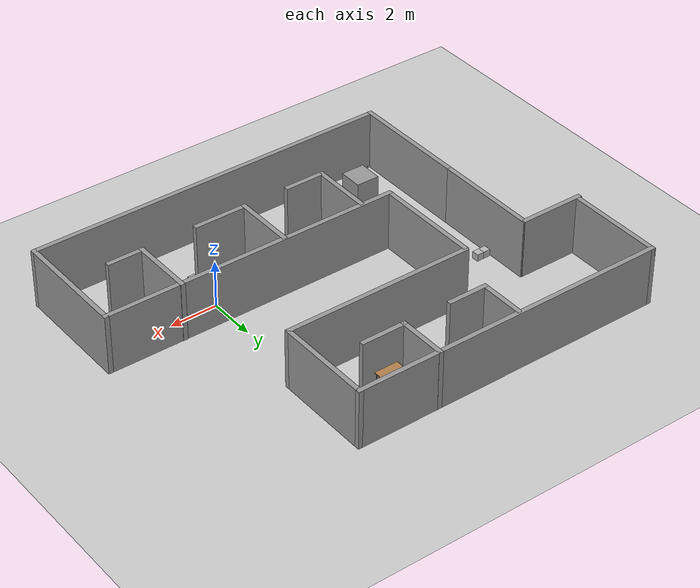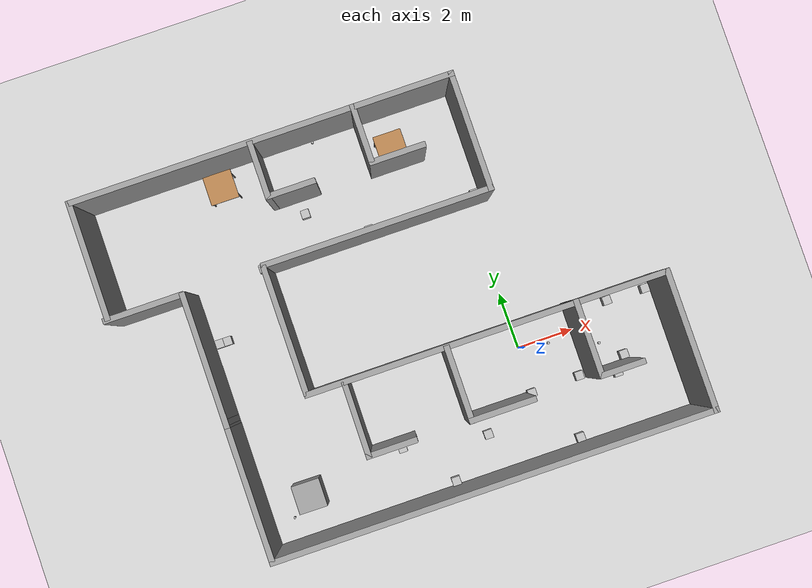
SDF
<sdf version="1.4">
 <world name="default">
  <physics type="ode">
   <gravity>0 0 -9.81</gravity>
   <ode>
    <solver><type>quick</type><iters>20</iters><sor>1</sor></solver>
    <constraints>
     <cfm>0</cfm>
     <erp>0.2</erp>
     <contact_max_correcting_vel>100</contact_max_correcting_vel>
     <contact_surface_layer>0</contact_surface_layer>
    </constraints>
   </ode>
   <real_time_update_rate>1000</real_time_update_rate>
   <max_step_size>0.001</max_step_size>
   <real_time_factor>1</real_time_factor>
  </physics>
  <light name="light1" type="directional">
   <pose>-2 0 4 0 -0 0</pose>
   <diffuse>1 1 1 1</diffuse>
   <specular>0.1 0.1 0.1 1</specular>
   <attenuation>
    <range>20</range>
    <constant>0.9</constant>
    <linear>0.01</linear>
    <quadratic>0.001</quadratic>
   </attenuation>
   <direction>0.2 0 -1</direction>
  </light>
  <model name="ground_plane">
   <static>1</static>
   <link name="link">
    <collision name="collision">
     <geometry><plane><normal>0 0 1</normal><size>100 100</size></plane></geometry>
     <surface><friction><ode><mu>100</mu><mu2>50</mu2></ode></friction></surface>
    </collision>
    <visual name="visual">
     <cast_shadows>0</cast_shadows>
     <geometry><plane><normal>0 0 1</normal><size>100 100</size></plane></geometry>
     <material>
      <script><uri>file://media/materials/scripts/gazebo.material</uri><name>Gazebo/Grey</name></script>
     </material>
    </visual>
    <velocity_decay><linear>0</linear><angular>0</angular></velocity_decay>
   </link>
  </model>
  <model name="building4">
   <pose>0.0604 0.08053 0 0 -0 0</pose>
   <link name="Wall_13">
    <collision name="Wall_13_Collision">
     <geometry><box><size>5.01 0.2 2.5</size></box></geometry>
     <pose>0 0 1.25 0 -0 0</pose>
    </collision>
    <visual name="Wall_13_Visual">
     <pose>0 0 1.25 0 -0 0</pose>
     <geometry><box><size>5.01 0.2 2.5</size></box></geometry>
     <material>
      <script><uri>file://media/materials/scripts/gazebo.material</uri><name>Gazebo/Grey</name></script>
     </material>
    </visual>
    <velocity_decay><linear>0</linear><angular>0</angular></velocity_decay>
    <pose>-10.233 -1.616 0 0 0 -1.5708</pose>
   </link>
   <link name="Wall_14">
    <collision name="Wall_14_Collision">
     <geometry><box><size>15.55 0.2 2.5</size></box></geometry>
     <pose>0 0 1.25 0 -0 0</pose>
    </collision>
    <visual name="Wall_14_Visual">
     <pose>0 0 1.25 0 -0 0</pose>
     <geometry><box><size>15.55 0.2 2.5</size></box></geometry>
     <material>
      <script><uri>file://media/materials/scripts/gazebo.material</uri><name>Gazebo/Grey</name></script>
     </material>
    </visual>
    <velocity_decay><linear>0</linear><angular>0</angular></velocity_decay>
    <pose>-2.55804 -4.02081 0 0 -0 2.5e-05</pose>
   </link>
   <link name="Wall_15">
    <collision name="Wall_15_Collision">
     <geometry><box><size>5.01 0.2 2.5</size></box></geometry>
     <pose>0 0 1.25 0 -0 0</pose>
    </collision>
    <visual name="Wall_15_Visual">
     <pose>0 0 1.25 0 -0 0</pose>
     <geometry><box><size>5.01 0.2 2.5</size></box></geometry>
     <material>
      <script><uri>file://media/materials/scripts/gazebo.material</uri><name>Gazebo/Grey</name></script>
     </material>
    </visual>
    <velocity_decay><linear>0</linear><angular>0</angular></velocity_decay>
    <pose>5.11693 -1.61562 0 0 -0 1.5708</pose>
   </link>
   <link name="Wall_16">
    <collision name="Wall_16_Collision">
     <geometry><box><size>12.72 0.2 2.5</size></box></geometry>
     <pose>0 0 1.25 0 -0 0</pose>
    </collision>
    <visual name="Wall_16_Visual">
     <pose>0 0 1.25 0 -0 0</pose>
     <geometry><box><size>12.72 0.2 2.5</size></box></geometry>
     <material>
      <script><uri>file://media/materials/scripts/gazebo.material</uri><name>Gazebo/Grey</name></script>
     </material>
    </visual>
    <velocity_decay><linear>0</linear><angular>0</angular></velocity_decay>
    <pose>-1.14308 0.789383 0 0 -0 3.14159</pose>
   </link>
   <link name="Wall_19">
    <collision name="Wall_19_Collision">
     <geometry><box><size>2.75243 0.2 2.5</size></box></geometry>
     <pose>0 0 1.25 0 -0 0</pose>
    </collision>
    <visual name="Wall_19_Visual">
     <pose>0 0 1.25 0 -0 0</pose>
     <geometry><box><size>2.75243 0.2 2.5</size></box></geometry>
     <material>
      <script><uri>file://media/materials/scripts/gazebo.material</uri><name>Gazebo/Grey</name></script>
     </material>
    </visual>
    <velocity_decay><linear>0</linear><angular>0</angular></velocity_decay>
    <pose>1.95298 -0.471453 0 0 0 -1.5708</pose>
   </link>
   <link name="Wall_20">
    <collision name="Wall_20_Collision">
     <geometry><box><size>1.61606 0.2 2.5</size></box></geometry>
     <pose>0 0 1.25 0 -0 0</pose>
    </collision>
    <visual name="Wall_20_Visual">
     <pose>0 0 1.25 0 -0 0</pose>
     <geometry><box><size>1.61606 0.2 2.5</size></box></geometry>
     <material>
      <script><uri>file://media/materials/scripts/gazebo.material</uri><name>Gazebo/Grey</name></script>
     </material>
    </visual>
    <velocity_decay><linear>0</linear><angular>0</angular></velocity_decay>
    <pose>2.66102 -1.74767 0 0 -0 0</pose>
   </link>
   <link name="Wall_22">
    <collision name="Wall_22_Collision">
     <geometry><box><size>2.69952 0.2 2.5</size></box></geometry>
     <pose>0 0 1.25 0 -0 0</pose>
    </collision>
    <visual name="Wall_22_Visual">
     <pose>0 0 1.25 0 -0 0</pose>
     <geometry><box><size>2.69952 0.2 2.5</size></box></geometry>
     <material>
      <script><uri>file://media/materials/scripts/gazebo.material</uri><name>Gazebo/Grey</name></script>
     </material>
    </visual>
    <velocity_decay><linear>0</linear><angular>0</angular></velocity_decay>
    <pose>-2.56997 -0.511128 0 0 0 -1.5708</pose>
   </link>
   <link name="Wall_23">
    <collision name="Wall_23_Collision">
     <geometry><box><size>2.34347 0.2 2.5</size></box></geometry>
     <pose>0 0 1.25 0 -0 0</pose>
    </collision>
    <visual name="Wall_23_Visual">
     <pose>0 0 1.25 0 -0 0</pose>
     <geometry><box><size>2.34347 0.2 2.5</size></box></geometry>
     <material>
      <script><uri>file://media/materials/scripts/gazebo.material</uri><name>Gazebo/Grey</name></script>
     </material>
    </visual>
    <velocity_decay><linear>0</linear><angular>0</angular></velocity_decay>
    <pose>-1.49823 -1.76089 0 0 -0 0</pose>
   </link>
   <link name="Wall_27">
    <collision name="Wall_27_Collision">
     <geometry><box><size>2.67304 0.2 2.5</size></box></geometry>
     <pose>0 0 1.25 0 -0 0</pose>
    </collision>
    <visual name="Wall_27_Visual">
     <pose>0 0 1.25 0 -0 0</pose>
     <geometry><box><size>2.67304 0.2 2.5</size></box></geometry>
     <material>
      <script><uri>file://media/materials/scripts/gazebo.material</uri><name>Gazebo/Grey</name></script>
     </material>
    </visual>
    <velocity_decay><linear>0</linear><angular>0</angular></velocity_decay>
    <pose>-6.134 -0.5245 0 0 0 -1.57646</pose>
   </link>
   <link name="Wall_28">
    <collision name="Wall_28_Collision">
     <geometry><box><size>1.78778 0.2 2.5</size></box></geometry>
     <pose>0 0 1.25 0 -0 0</pose>
    </collision>
    <visual name="Wall_28_Visual">
     <pose>0 0 1.25 0 -0 0</pose>
     <geometry><box><size>1.78778 0.2 2.5</size></box></geometry>
     <material>
      <script><uri>file://media/materials/scripts/gazebo.material</uri><name>Gazebo/Grey</name></script>
     </material>
    </visual>
    <velocity_decay><linear>0</linear><angular>0</angular></velocity_decay>
    <pose>-5.34711 -1.761 0 0 -0 0</pose>
   </link>
   <link name="Wall_30">
    <collision name="Wall_30_Collision">
     <geometry><box><size>4.722 0.2 2.5</size></box></geometry>
     <pose>0 0 1.25 0 -0 0</pose>
    </collision>
    <visual name="Wall_30_Visual">
     <pose>0 0 1.25 0 -0 0</pose>
     <geometry><box><size>4.722 0.2 2.5</size></box></geometry>
     <material>
      <script><uri>file://media/materials/scripts/gazebo.material</uri><name>Gazebo/Grey</name></script>
     </material>
    </visual>
    <velocity_decay><linear>0</linear><angular>0</angular></velocity_decay>
    <pose>-10.233 2.952 0 0 -0 1.5708</pose>
   </link>
   <link name="Wall_32">
    <collision name="Wall_32_Collision">
     <geometry><box><size>4.52699 0.2 2.5</size></box></geometry>
     <pose>0 0 1.25 0 -0 0</pose>
    </collision>
    <visual name="Wall_32_Visual">
     <pose>0 0 1.25 0 -0 0</pose>
     <geometry><box><size>4.52699 0.2 2.5</size></box></geometry>
     <material>
      <script><uri>file://media/materials/scripts/gazebo.material</uri><name>Gazebo/Grey</name></script>
     </material>
    </visual>
    <velocity_decay><linear>0</linear><angular>0</angular></velocity_decay>
    <pose>-7.41943 3.02427 0 0 -0 1.5708</pose>
   </link>
   <link name="Wall_35">
    <collision name="Wall_35_Collision">
     <geometry><box><size>2.80534 0.2 2.5</size></box></geometry>
     <pose>0 0 1.25 0 -0 0</pose>
    </collision>
    <visual name="Wall_35_Visual">
     <pose>0 0 1.25 0 -0 0</pose>
     <geometry><box><size>2.80534 0.2 2.5</size></box></geometry>
     <material>
      <script><uri>file://media/materials/scripts/gazebo.material</uri><name>Gazebo/Grey</name></script>
     </material>
    </visual>
    <velocity_decay><linear>0</linear><angular>0</angular></velocity_decay>
    <pose>-11.5868 5.23749 0 0 -0 3.14159</pose>
   </link>
   <link name="Wall_38">
    <collision name="Wall_38_Collision">
     <geometry><box><size>4.19003 0.2 2.5</size></box></geometry>
     <pose>0 0 1.25 0 -0 0</pose>
    </collision>
    <visual name="Wall_38_Visual">
     <pose>0 0 1.25 0 -0 0</pose>
     <geometry><box><size>4.19003 0.2 2.5</size></box></geometry>
     <material>
      <script><uri>file://media/materials/scripts/gazebo.material</uri><name>Gazebo/Grey</name></script>
     </material>
    </visual>
    <velocity_decay><linear>0</linear><angular>0</angular></velocity_decay>
    <pose>-12.8151 7.30342 0 0 -0 1.5708</pose>
   </link>
   <link name="Wall_39">
    <collision name="Wall_39_Collision">
     <geometry><box><size>13.5347 0.2 2.5</size></box></geometry>
     <pose>0 0 1.25 0 -0 0</pose>
    </collision>
    <visual name="Wall_39_Visual">
     <pose>0 0 1.25 0 -0 0</pose>
     <geometry><box><size>13.5347 0.2 2.5</size></box></geometry>
     <material>
      <script><uri>file://media/materials/scripts/gazebo.material</uri><name>Gazebo/Grey</name></script>
     </material>
    </visual>
    <velocity_decay><linear>0</linear><angular>0</angular></velocity_decay>
    <pose>-6.14777 9.29843 0 0 -0 0</pose>
   </link>
   <link name="Wall_40">
    <collision name="Wall_40_Collision">
     <geometry><box><size>4.21663 0.2 2.5</size></box></geometry>
     <pose>0 0 1.25 0 -0 0</pose>
    </collision>
    <visual name="Wall_40_Visual">
     <pose>0 0 1.25 0 -0 0</pose>
     <geometry><box><size>4.21663 0.2 2.5</size></box></geometry>
     <material>
      <script><uri>file://media/materials/scripts/gazebo.material</uri><name>Gazebo/Grey</name></script>
     </material>
    </visual>
    <velocity_decay><linear>0</linear><angular>0</angular></velocity_decay>
    <pose>0.51957 7.29012 0 0 0 -1.5708</pose>
   </link>
   <link name="Wall_41">
    <collision name="Wall_41_Collision">
     <geometry><box><size>8.1083 0.2 2.5</size></box></geometry>
     <pose>0 0 1.25 0 -0 0</pose>
    </collision>
    <visual name="Wall_41_Visual">
     <pose>0 0 1.25 0 -0 0</pose>
     <geometry><box><size>8.1083 0.2 2.5</size></box></geometry>
     <material>
      <script><uri>file://media/materials/scripts/gazebo.material</uri><name>Gazebo/Grey</name></script>
     </material>
    </visual>
    <velocity_decay><linear>0</linear><angular>0</angular></velocity_decay>
    <pose>-3.43455 5.2818 0 0 -0 3.14159</pose>
   </link>
   <link name="Wall_43">
    <collision name="Wall_43_Collision">
     <geometry><box><size>2.14297 0.2 2.5</size></box></geometry>
     <pose>0 0 1.25 0 -0 0</pose>
    </collision>
    <visual name="Wall_43_Visual">
     <pose>0 0 1.25 0 -0 0</pose>
     <geometry><box><size>2.14297 0.2 2.5</size></box></geometry>
     <material>
      <script><uri>file://media/materials/scripts/gazebo.material</uri><name>Gazebo/Grey</name></script>
     </material>
    </visual>
    <velocity_decay><linear>0</linear><angular>0</angular></velocity_decay>
    <pose>-2.91992 8.32953 0 0 0 -1.5708</pose>
   </link>
   <link name="Wall_44">
    <collision name="Wall_44_Collision">
     <geometry><box><size>1.98106 0.2 2.5</size></box></geometry>
     <pose>0 0 1.25 0 -0 0</pose>
    </collision>
    <visual name="Wall_44_Visual">
     <pose>0 0 1.25 0 -0 0</pose>
     <geometry><box><size>1.98106 0.2 2.5</size></box></geometry>
     <material>
      <script><uri>file://media/materials/scripts/gazebo.material</uri><name>Gazebo/Grey</name></script>
     </material>
    </visual>
    <velocity_decay><linear>0</linear><angular>0</angular></velocity_decay>
    <pose>-2.02939 7.35804 0 0 -0 0</pose>
   </link>
   <link name="Wall_54">
    <collision name="Wall_54_Collision">
     <geometry><box><size>2.03541 0.2 2.5</size></box></geometry>
     <pose>0 0 1.25 0 -0 0</pose>
    </collision>
    <visual name="Wall_54_Visual">
     <pose>0 0 1.25 0 -0 0</pose>
     <geometry><box><size>2.03541 0.2 2.5</size></box></geometry>
     <material>
      <script><uri>file://media/materials/scripts/gazebo.material</uri><name>Gazebo/Grey</name></script>
     </material>
    </visual>
    <velocity_decay><linear>0</linear><angular>0</angular></velocity_decay>
    <pose>-6.52977 8.31143 0 0 0 -1.5708</pose>
   </link>
   <link name="Wall_55">
    <collision name="Wall_55_Collision">
     <geometry><box><size>1.7601 0.2 2.5</size></box></geometry>
     <pose>0 0 1.25 0 -0 0</pose>
    </collision>
    <visual name="Wall_55_Visual">
     <pose>0 0 1.25 0 -0 0</pose>
     <geometry><box><size>1.7601 0.2 2.5</size></box></geometry>
     <material>
      <script><uri>file://media/materials/scripts/gazebo.material</uri><name>Gazebo/Grey</name></script>
     </material>
    </visual>
    <velocity_decay><linear>0</linear><angular>0</angular></velocity_decay>
    <pose>-5.74972 7.39373 0 0 -0 0</pose>
   </link>
   <static>1</static>
  </model>
  <scene><ambient>0.4 0.4 0.4 1</ambient><background>0.7 0.7 0.7 1</background><shadows>1</shadows></scene>
  <spherical_coordinates>
   <surface_model>EARTH_WGS84</surface_model>
   <latitude_deg>0</latitude_deg>
   <longitude_deg>0</longitude_deg>
   <elevation>0</elevation>
   <heading_deg>0</heading_deg>
  </spherical_coordinates>
  <model name="cocacola">
   <static>0</static>
   <link name="link">
    <inertial>
     <mass>0.25</mass>
     <inertia><ixx>0</ixx><ixy>0</ixy><ixz>0</ixz><iyy>0</iyy><iyz>0</iyz><izz>0</izz></inertia>
    </inertial>
    <collision name="collision">
     <pose>0 0 0.075 -3.14159 -0 0</pose>
     <geometry><cylinder><radius>0.04</radius><length>0.15</length></cylinder></geometry>
    </collision>
    <visual name="visual">
     <pose>0 0 0.075 -3.14159 -0 0</pose>
     <geometry><cylinder><radius>0.04</radius><length>0.15</length></cylinder></geometry>
     <material>
      <script>
       <uri>model://cocacola/material/scripts</uri>
       <uri>model://cocacola/material/textures</uri>
       <name>Custom/cocacola</name>
      </script>
     </material>
    </visual>
    <velocity_decay><linear>0</linear><angular>0</angular></velocity_decay>
   </link>
   <pose>2.68091 -0.744272 0.300008 0.000105 -0.000178 2e-05</pose>
  </model>
  <model name="cocacola_0">
   <static>0</static>
   <link name="link">
    <inertial>
     <mass>0.25</mass>
     <inertia><ixx>0</ixx><ixy>0</ixy><ixz>0</ixz><iyy>0</iyy><iyz>0</iyz><izz>0</izz></inertia>
    </inertial>
    <collision name="collision">
     <pose>0 0 0.075 -3.14159 -0 0</pose>
     <geometry><cylinder><radius>0.04</radius><length>0.15</length></cylinder></geometry>
    </collision>
    <visual name="visual">
     <pose>0 0 0.075 -3.14159 -0 0</pose>
     <geometry><cylinder><radius>0.04</radius><length>0.15</length></cylinder></geometry>
     <material>
      <script>
       <uri>model://cocacola/material/scripts</uri>
       <uri>model://cocacola/material/textures</uri>
       <name>Custom/cocacola</name>
      </script>
     </material>
    </visual>
    <velocity_decay><linear>0</linear><angular>0</angular></velocity_decay>
   </link>
   <pose>1 -0.177691 0.299999 1.7e-05 -0.000227 1e-06</pose>
  </model>
  <model name="cocacola_1">
   <static>0</static>
   <link name="link">
    <inertial>
     <mass>0.25</mass>
     <inertia><ixx>0</ixx><ixy>0</ixy><ixz>0</ixz><iyy>0</iyy><iyz>0</iyz><izz>0</izz></inertia>
    </inertial>
    <collision name="collision">
     <pose>0 0 0.075 -3.14159 -0 0</pose>
     <geometry><cylinder><radius>0.04</radius><length>0.15</length></cylinder></geometry>
    </collision>
    <visual name="visual">
     <pose>0 0 0.075 -3.14159 -0 0</pose>
     <geometry><cylinder><radius>0.04</radius><length>0.15</length></cylinder></geometry>
     <material>
      <script>
       <uri>model://cocacola/material/scripts</uri>
       <uri>model://cocacola/material/textures</uri>
       <name>Custom/cocacola</name>
      </script>
     </material>
    </visual>
    <velocity_decay><linear>0</linear><angular>0</angular></velocity_decay>
   </link>
   <pose>-9.25325 -3 0.660005 0.000351 -1.4e-05 -2e-06</pose>
  </model>
  <model name="table_1m">
   <static>1</static>
   <link name="link">
    <collision name="surface">
     <pose>0 0 1.01 0 -0 0</pose>
     <geometry><box><size>1 1.01 0.03</size></box></geometry>
    </collision>
    <visual name="visual1">
     <pose>0 0 1.01 0 -0 0</pose>
     <geometry><box><size>1 1.01 0.03</size></box></geometry>
     <material>
      <script><uri>file://media/materials/scripts/gazebo.material</uri><name>Gazebo/Wood</name></script>
     </material>
    </visual>
    <collision name="front_left_leg">
     <pose>0.48 0.38 0.5005 0 -0 0</pose>
     <geometry><cylinder><radius>0.02</radius><length>1.01</length></cylinder></geometry>
    </collision>
    <visual name="front_left_leg">
     <pose>0.48 0.38 0.5005 0 -0 0</pose>
     <geometry><cylinder><radius>0.02</radius><length>1.01</length></cylinder></geometry>
     <material>
      <script><uri>file://media/materials/scripts/gazebo.material</uri><name>Gazebo/Grey</name></script>
     </material>
    </visual>
    <collision name="front_right_leg">
     <pose>0.48 -0.38 0.5005 0 -0 0</pose>
     <geometry><cylinder><radius>0.02</radius><length>1.01</length></cylinder></geometry>
    </collision>
    <visual name="front_right_leg">
     <pose>0.48 -0.38 0.5005 0 -0 0</pose>
     <geometry><cylinder><radius>0.02</radius><length>1.01</length></cylinder></geometry>
     <material>
      <script><uri>file://media/materials/scripts/gazebo.material</uri><name>Gazebo/Grey</name></script>
     </material>
    </visual>
    <collision name="back_right_leg">
     <pose>-0.48 -0.38 0.5005 0 -0 0</pose>
     <geometry><cylinder><radius>0.02</radius><length>1.01</length></cylinder></geometry>
    </collision>
    <visual name="back_right_leg">
     <pose>-0.48 -0.38 0.5005 0 -0 0</pose>
     <geometry><cylinder><radius>0.02</radius><length>1.01</length></cylinder></geometry>
     <material>
      <script><uri>file://media/materials/scripts/gazebo.material</uri><name>Gazebo/Grey</name></script>
     </material>
    </visual>
    <collision name="back_left_leg">
     <pose>-0.48 0.38 0.5005 0 -0 0</pose>
     <geometry><cylinder><radius>0.02</radius><length>1.01</length></cylinder></geometry>
    </collision>
    <visual name="back_left_leg">
     <pose>-0.48 0.38 0.5005 0 -0 0</pose>
     <geometry><cylinder><radius>0.02</radius><length>1.01</length></cylinder></geometry>
     <material>
      <script><uri>file://media/materials/scripts/gazebo.material</uri><name>Gazebo/Grey</name></script>
     </material>
    </visual>
    <velocity_decay><linear>0</linear><angular>0</angular></velocity_decay>
   </link>
   <pose>-8 8.5652 0 0 -0 0</pose>
  </model>
  <model name="cocacola_3">
   <static>0</static>
   <link name="link">
    <inertial>
     <mass>0.25</mass>
     <inertia><ixx>0</ixx><ixy>0</ixy><ixz>0</ixz><iyy>0</iyy><iyz>0</iyz><izz>0</izz></inertia>
    </inertial>
    <collision name="collision">
     <pose>0 0 0.075 -3.14159 -0 0</pose>
     <geometry><cylinder><radius>0.04</radius><length>0.15</length></cylinder></geometry>
    </collision>
    <visual name="visual">
     <pose>0 0 0.075 -3.14159 -0 0</pose>
     <geometry><cylinder><radius>0.04</radius><length>0.15</length></cylinder></geometry>
     <material>
      <script>
       <uri>model://cocacola/material/scripts</uri>
       <uri>model://cocacola/material/textures</uri>
       <name>Custom/cocacola</name>
      </script>
     </material>
    </visual>
    <velocity_decay><linear>0</linear><angular>0</angular></velocity_decay>
   </link>
   <pose>-4.52272 9.0837 0.609999 4.2e-05 -0.000202 1e-05</pose>
  </model>
  <model name="table_1m_0">
   <static>1</static>
   <link name="link">
    <collision name="surface">
     <pose>0 0 1.01 0 -0 0</pose>
     <geometry><box><size>1 1.01 0.03</size></box></geometry>
    </collision>
    <visual name="visual1">
     <pose>0 0 1.01 0 -0 0</pose>
     <geometry><box><size>1 1.01 0.03</size></box></geometry>
     <material>
      <script><uri>file://media/materials/scripts/gazebo.material</uri><name>Gazebo/Wood</name></script>
     </material>
    </visual>
    <collision name="front_left_leg">
     <pose>0.48 0.38 0.5005 0 -0 0</pose>
     <geometry><cylinder><radius>0.02</radius><length>1.01</length></cylinder></geometry>
    </collision>
    <visual name="front_left_leg">
     <pose>0.48 0.38 0.5005 0 -0 0</pose>
     <geometry><cylinder><radius>0.02</radius><length>1.01</length></cylinder></geometry>
     <material>
      <script><uri>file://media/materials/scripts/gazebo.material</uri><name>Gazebo/Grey</name></script>
     </material>
    </visual>
    <collision name="front_right_leg">
     <pose>0.48 -0.38 0.5005 0 -0 0</pose>
     <geometry><cylinder><radius>0.02</radius><length>1.01</length></cylinder></geometry>
    </collision>
    <visual name="front_right_leg">
     <pose>0.48 -0.38 0.5005 0 -0 0</pose>
     <geometry><cylinder><radius>0.02</radius><length>1.01</length></cylinder></geometry>
     <material>
      <script><uri>file://media/materials/scripts/gazebo.material</uri><name>Gazebo/Grey</name></script>
     </material>
    </visual>
    <collision name="back_right_leg">
     <pose>-0.48 -0.38 0.5005 0 -0 0</pose>
     <geometry><cylinder><radius>0.02</radius><length>1.01</length></cylinder></geometry>
    </collision>
    <visual name="back_right_leg">
     <pose>-0.48 -0.38 0.5005 0 -0 0</pose>
     <geometry><cylinder><radius>0.02</radius><length>1.01</length></cylinder></geometry>
     <material>
      <script><uri>file://media/materials/scripts/gazebo.material</uri><name>Gazebo/Grey</name></script>
     </material>
    </visual>
    <collision name="back_left_leg">
     <pose>-0.48 0.38 0.5005 0 -0 0</pose>
     <geometry><cylinder><radius>0.02</radius><length>1.01</length></cylinder></geometry>
    </collision>
    <visual name="back_left_leg">
     <pose>-0.48 0.38 0.5005 0 -0 0</pose>
     <geometry><cylinder><radius>0.02</radius><length>1.01</length></cylinder></geometry>
     <material>
      <script><uri>file://media/materials/scripts/gazebo.material</uri><name>Gazebo/Grey</name></script>
     </material>
    </visual>
    <velocity_decay><linear>0</linear><angular>0</angular></velocity_decay>
   </link>
   <pose>-2 8 0 0 -0 0</pose>
  </model>
  <model name="box">
   <static>0</static>
   <link name="box">
    <pose>0 0 0.5 0 -0 0</pose>
    <collision name="collision"><geometry><box><size>0.3 0.3 0.3</size></box></geometry></collision>
    <visual name="visual">
     <geometry><box><size>0.3 0.3 0.3</size></box></geometry>
     <material>
      <script>
       <uri>model://box/material/scripts</uri>
       <uri>model://box/material/textures</uri>
       <name>Custom/box</name>
      </script>
     </material>
    </visual>
    <velocity_decay><linear>0</linear><angular>0</angular></velocity_decay>
    <inertial>
     <inertia><ixx>1</ixx><ixy>0</ixy><ixz>0</ixz><iyy>1</iyy><iyz>0</iyz><izz>1</izz></inertia>
     <mass>1</mass>
    </inertial>
   </link>
   <pose>-0.08476 -1.65647 -0.35 -1e-06 -0 -7.2e-05</pose>
  </model>
  <model name="box_0">
   <static>0</static>
   <link name="box">
    <pose>0 0 0.5 0 -0 0</pose>
    <collision name="collision"><geometry><box><size>0.3 0.3 0.3</size></box></geometry></collision>
    <visual name="visual">
     <geometry><box><size>0.3 0.3 0.3</size></box></geometry>
     <material>
      <script>
       <uri>model://box/material/scripts</uri>
       <uri>model://box/material/textures</uri>
       <name>Custom/box</name>
      </script>
     </material>
    </visual>
    <velocity_decay><linear>0</linear><angular>0</angular></velocity_decay>
    <inertial>
     <inertia><ixx>1</ixx><ixy>0</ixy><ixz>0</ixz><iyy>1</iyy><iyz>0</iyz><izz>1</izz></inertia>
     <mass>1</mass>
    </inertial>
   </link>
   <pose>3.40518 -1.40484 -0.349997 -5e-06 1.2e-05 -5.2e-05</pose>
  </model>
  <model name="box_1">
   <static>0</static>
   <link name="box">
    <pose>0 0 0.5 0 -0 0</pose>
    <collision name="collision"><geometry><box><size>0.3 0.3 0.3</size></box></geometry></collision>
    <visual name="visual">
     <geometry><box><size>0.3 0.3 0.3</size></box></geometry>
     <material>
      <script>
       <uri>model://box/material/scripts</uri>
       <uri>model://box/material/textures</uri>
       <name>Custom/box</name>
      </script>
     </material>
    </visual>
    <velocity_decay><linear>0</linear><angular>0</angular></velocity_decay>
    <inertial>
     <inertia><ixx>1</ixx><ixy>0</ixy><ixz>0</ixz><iyy>1</iyy><iyz>0</iyz><izz>1</izz></inertia>
     <mass>1</mass>
    </inertial>
   </link>
   <pose>3.4535 0.568197 -0.349996 -2e-06 -2.2e-05 -6.8e-05</pose>
  </model>
  <model name="box_2">
   <static>0</static>
   <link name="box">
    <pose>0 0 0.5 0 -0 0</pose>
    <collision name="collision"><geometry><box><size>0.3 0.3 0.3</size></box></geometry></collision>
    <visual name="visual">
     <geometry><box><size>0.3 0.3 0.3</size></box></geometry>
     <material>
      <script>
       <uri>model://box/material/scripts</uri>
       <uri>model://box/material/textures</uri>
       <name>Custom/box</name>
      </script>
     </material>
    </visual>
    <velocity_decay><linear>0</linear><angular>0</angular></velocity_decay>
    <inertial>
     <inertia><ixx>1</ixx><ixy>0</ixy><ixz>0</ixz><iyy>1</iyy><iyz>0</iyz><izz>1</izz></inertia>
     <mass>1</mass>
    </inertial>
   </link>
   <pose>4.85744 0.537554 -0.35 0 -0 8.2e-05</pose>
  </model>
  <model name="box_3">
   <static>0</static>
   <link name="box">
    <pose>0 0 0.5 0 -0 0</pose>
    <collision name="collision"><geometry><box><size>0.3 0.3 0.3</size></box></geometry></collision>
    <visual name="visual">
     <geometry><box><size>0.3 0.3 0.3</size></box></geometry>
     <material>
      <script>
       <uri>model://box/material/scripts</uri>
       <uri>model://box/material/textures</uri>
       <name>Custom/box</name>
      </script>
     </material>
    </visual>
    <velocity_decay><linear>0</linear><angular>0</angular></velocity_decay>
    <inertial>
     <inertia><ixx>1</ixx><ixy>0</ixy><ixz>0</ixz><iyy>1</iyy><iyz>0</iyz><izz>1</izz></inertia>
     <mass>1</mass>
    </inertial>
   </link>
   <pose>1.67736 -1.60794 -0.35 0 2e-06 -9e-06</pose>
  </model>
  <model name="box_5">
   <static>0</static>
   <link name="box">
    <pose>0 0 0.5 0 -0 0</pose>
    <collision name="collision"><geometry><box><size>0.3 0.3 0.3</size></box></geometry></collision>
    <visual name="visual">
     <geometry><box><size>0.3 0.3 0.3</size></box></geometry>
     <material>
      <script>
       <uri>model://box/material/scripts</uri>
       <uri>model://box/material/textures</uri>
       <name>Custom/box</name>
      </script>
     </material>
    </visual>
    <velocity_decay><linear>0</linear><angular>0</angular></velocity_decay>
    <inertial>
     <inertia><ixx>1</ixx><ixy>0</ixy><ixz>0</ixz><iyy>1</iyy><iyz>0</iyz><izz>1</izz></inertia>
     <mass>1</mass>
    </inertial>
   </link>
   <pose>-5 -2 -0.35 -1.61559e-27 -1e-06 -1e-05</pose>
  </model>
  <model name="box_6">
   <static>0</static>
   <link name="box">
    <pose>0 0 0.5 0 -0 0</pose>
    <collision name="collision"><geometry><box><size>0.3 0.3 0.3</size></box></geometry></collision>
    <visual name="visual">
     <geometry><box><size>0.3 0.3 0.3</size></box></geometry>
     <material>
      <script>
       <uri>model://box/material/scripts</uri>
       <uri>model://box/material/textures</uri>
       <name>Custom/box</name>
      </script>
     </material>
    </visual>
    <velocity_decay><linear>0</linear><angular>0</angular></velocity_decay>
    <inertial>
     <inertia><ixx>1</ixx><ixy>0</ixy><ixz>0</ixz><iyy>1</iyy><iyz>0</iyz><izz>1</izz></inertia>
     <mass>1</mass>
    </inertial>
   </link>
   <pose>-2 -2.51435 -0.35 1e-06 6.46235e-27 3.4e-05</pose>
  </model>
  <model name="box_8">
   <static>0</static>
   <link name="box">
    <pose>0 0 0.5 0 -0 0</pose>
    <collision name="collision"><geometry><box><size>0.3 0.3 0.3</size></box></geometry></collision>
    <visual name="visual">
     <geometry><box><size>0.3 0.3 0.3</size></box></geometry>
     <material>
      <script>
       <uri>model://box/material/scripts</uri>
       <uri>model://box/material/textures</uri>
       <name>Custom/box</name>
      </script>
     </material>
    </visual>
    <velocity_decay><linear>0</linear><angular>0</angular></velocity_decay>
    <inertial>
     <inertia><ixx>1</ixx><ixy>0</ixy><ixz>0</ixz><iyy>1</iyy><iyz>0</iyz><izz>1</izz></inertia>
     <mass>1</mass>
    </inertial>
   </link>
   <pose>2.99861 -1.92929 -0.35 -1e-06 -2e-06 -5.4e-05</pose>
  </model>
  <model name="box_9">
   <static>0</static>
   <link name="box">
    <pose>0 0 0.5 0 -0 0</pose>
    <collision name="collision"><geometry><box><size>0.3 0.3 0.3</size></box></geometry></collision>
    <visual name="visual">
     <geometry><box><size>0.3 0.3 0.3</size></box></geometry>
     <material>
      <script>
       <uri>model://box/material/scripts</uri>
       <uri>model://box/material/textures</uri>
       <name>Custom/box</name>
      </script>
     </material>
    </visual>
    <velocity_decay><linear>0</linear><angular>0</angular></velocity_decay>
    <inertial>
     <inertia><ixx>1</ixx><ixy>0</ixy><ixz>0</ixz><iyy>1</iyy><iyz>0</iyz><izz>1</izz></inertia>
     <mass>1</mass>
    </inertial>
   </link>
   <pose>1.01487 -3.6544 -0.35 -1e-06 -1e-06 1.2e-05</pose>
  </model>
  <model name="box_12">
   <static>0</static>
   <link name="box">
    <pose>0 0 0.5 0 -0 0</pose>
    <collision name="collision"><geometry><box><size>0.3 0.3 0.3</size></box></geometry></collision>
    <visual name="visual">
     <geometry><box><size>0.3 0.3 0.3</size></box></geometry>
     <material>
      <script>
       <uri>model://box/material/scripts</uri>
       <uri>model://box/material/textures</uri>
       <name>Custom/box</name>
      </script>
     </material>
    </visual>
    <velocity_decay><linear>0</linear><angular>0</angular></velocity_decay>
    <inertial>
     <inertia><ixx>1</ixx><ixy>0</ixy><ixz>0</ixz><iyy>1</iyy><iyz>0</iyz><izz>1</izz></inertia>
     <mass>1</mass>
    </inertial>
   </link>
   <pose>-9.87533 3.51912 -0.35 0 1e-06 7.8e-05</pose>
  </model>
  <model name="box_14">
   <static>0</static>
   <link name="box">
    <pose>0 0 0.5 0 -0 0</pose>
    <collision name="collision"><geometry><box><size>0.3 0.3 0.3</size></box></geometry></collision>
    <visual name="visual">
     <geometry><box><size>0.3 0.3 0.3</size></box></geometry>
     <material>
      <script>
       <uri>model://box/material/scripts</uri>
       <uri>model://box/material/textures</uri>
       <name>Custom/box</name>
      </script>
     </material>
    </visual>
    <velocity_decay><linear>0</linear><angular>0</angular></velocity_decay>
    <inertial>
     <inertia><ixx>1</ixx><ixy>0</ixy><ixz>0</ixz><iyy>1</iyy><iyz>0</iyz><izz>1</izz></inertia>
     <mass>1</mass>
    </inertial>
   </link>
   <pose>-3.61825 5.62309 -0.35 6.46235e-27 -1e-06 -4e-05</pose>
  </model>
  <model name="box_15">
   <static>0</static>
   <link name="box">
    <pose>0 0 0.5 0 -0 0</pose>
    <collision name="collision"><geometry><box><size>0.3 0.3 0.3</size></box></geometry></collision>
    <visual name="visual">
     <geometry><box><size>0.3 0.3 0.3</size></box></geometry>
     <material>
      <script>
       <uri>model://box/material/scripts</uri>
       <uri>model://box/material/textures</uri>
       <name>Custom/box</name>
      </script>
     </material>
    </visual>
    <velocity_decay><linear>0</linear><angular>0</angular></velocity_decay>
    <inertial>
     <inertia><ixx>1</ixx><ixy>0</ixy><ixz>0</ixz><iyy>1</iyy><iyz>0</iyz><izz>1</izz></inertia>
     <mass>1</mass>
    </inertial>
   </link>
   <pose>0.300272 5.63623 -0.35 0 -0 2.5e-05</pose>
  </model>
  <model name="box_16">
   <static>0</static>
   <link name="box">
    <pose>0 0 0.5 0 -0 0</pose>
    <collision name="collision"><geometry><box><size>0.3 0.3 0.3</size></box></geometry></collision>
    <visual name="visual">
     <geometry><box><size>0.3 0.3 0.3</size></box></geometry>
     <material>
      <script>
       <uri>model://box/material/scripts</uri>
       <uri>model://box/material/textures</uri>
       <name>Custom/box</name>
      </script>
     </material>
    </visual>
    <velocity_decay><linear>0</linear><angular>0</angular></velocity_decay>
    <inertial>
     <inertia><ixx>1</ixx><ixy>0</ixy><ixz>0</ixz><iyy>1</iyy><iyz>0</iyz><izz>1</izz></inertia>
     <mass>1</mass>
    </inertial>
   </link>
   <pose>-7.57844 5.53452 -0.349999 7e-06 1e-06 -0.003784</pose>
  </model>
  <model name="box_7">
   <static>0</static>
   <link name="box">
    <pose>0 0 0.5 0 -0 0</pose>
    <collision name="collision"><geometry><box><size>0.3 0.3 0.3</size></box></geometry></collision>
    <visual name="visual">
     <geometry><box><size>0.3 0.3 0.3</size></box></geometry>
     <material>
      <script>
       <uri>model://box/material/scripts</uri>
       <uri>model://box/material/textures</uri>
       <name>Custom/box</name>
      </script>
     </material>
    </visual>
    <velocity_decay><linear>0</linear><angular>0</angular></velocity_decay>
    <inertial>
     <inertia><ixx>1</ixx><ixy>0</ixy><ixz>0</ixz><iyy>1</iyy><iyz>0</iyz><izz>1</izz></inertia>
     <mass>1</mass>
    </inertial>
   </link>
   <pose>-3.58736 -3.69011 -0.35 1e-06 1e-06 -0.000191</pose>
  </model>
  <model name="box_17">
   <static>0</static>
   <link name="box">
    <pose>0 0 0.5 0 -0 0</pose>
    <collision name="collision"><geometry><box><size>0.3 0.3 0.3</size></box></geometry></collision>
    <visual name="visual">
     <geometry><box><size>0.3 0.3 0.3</size></box></geometry>
     <material>
      <script>
       <uri>model://box/material/scripts</uri>
       <uri>model://box/material/textures</uri>
       <name>Custom/box</name>
      </script>
     </material>
    </visual>
    <velocity_decay><linear>0</linear><angular>0</angular></velocity_decay>
    <inertial>
     <inertia><ixx>1</ixx><ixy>0</ixy><ixz>0</ixz><iyy>1</iyy><iyz>0</iyz><izz>1</izz></inertia>
     <mass>1</mass>
    </inertial>
   </link>
   <pose>-5.57287 6.86952 -0.35 2.06795e-25 -1e-06 0.001687</pose>
  </model>
  <model name="box_18">
   <static>0</static>
   <link name="box">
    <pose>0 0 0.5 0 -0 0</pose>
    <collision name="collision"><geometry><box><size>0.3 0.3 0.3</size></box></geometry></collision>
    <visual name="visual">
     <geometry><box><size>0.3 0.3 0.3</size></box></geometry>
     <material>
      <script>
       <uri>model://box/material/scripts</uri>
       <uri>model://box/material/textures</uri>
       <name>Custom/box</name>
      </script>
     </material>
    </visual>
    <velocity_decay><linear>0</linear><angular>0</angular></velocity_decay>
    <inertial>
     <inertia><ixx>1</ixx><ixy>0</ixy><ixz>0</ixz><iyy>1</iyy><iyz>0</iyz><izz>1</izz></inertia>
     <mass>1</mass>
    </inertial>
   </link>
   <pose>-9.57525 3.51929 -0.35 0 -0 0.00015</pose>
  </model>
  <model name="unit_box_2">
   <pose>-8.52884 -2.4516 0.5 0 -1e-06 -0.009576</pose>
   <link name="link">
    <inertial>
     <mass>1</mass>
     <inertia><ixx>1</ixx><ixy>0</ixy><ixz>0</ixz><iyy>1</iyy><iyz>0</iyz><izz>1</izz></inertia>
    </inertial>
    <collision name="collision"><geometry><box><size>1 1 1</size></box></geometry></collision>
    <visual name="visual">
     <geometry><box><size>1 1 1</size></box></geometry>
     <material>
      <script><uri>file://media/materials/scripts/gazebo.material</uri><name>Gazebo/Grey</name></script>
     </material>
    </visual>
    <velocity_decay><linear>0</linear><angular>0</angular></velocity_decay>
   </link>
   <static>0</static>
  </model>
 </world>
</sdf>
